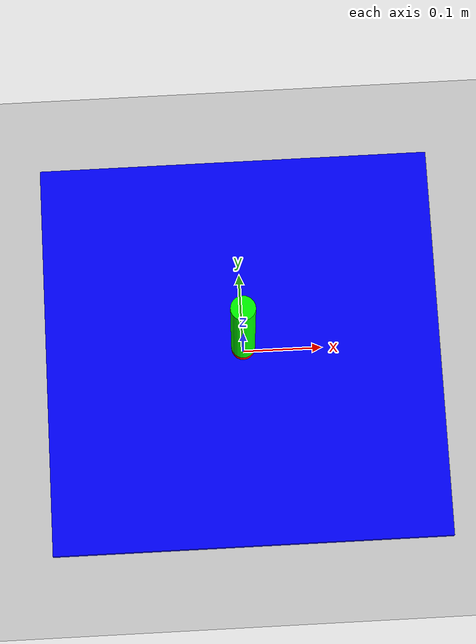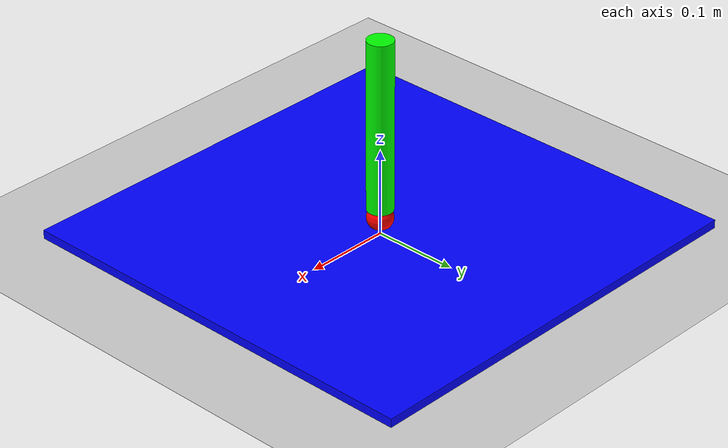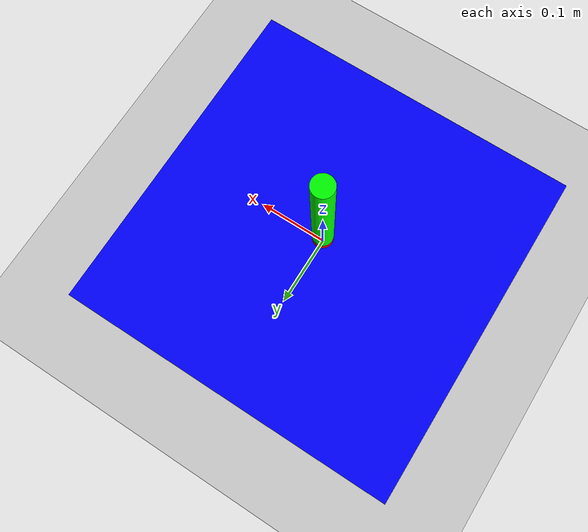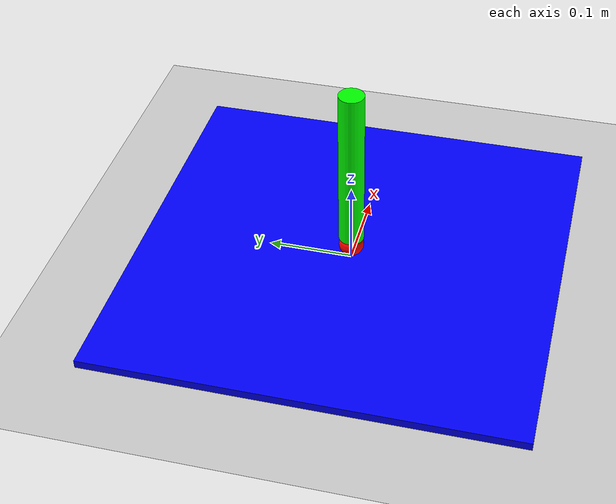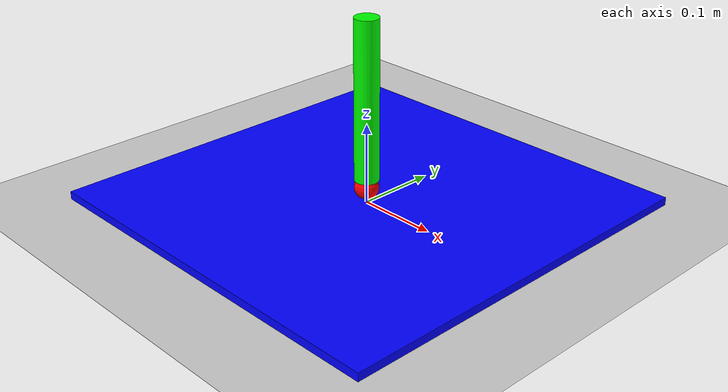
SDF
<sdf version="1.7">
 <world name="default">
  <light name="sun" type="directional">
   <pose>0 0 10 0 -0 0</pose>
   <diffuse>0.8 0.8 0.8 1</diffuse>
   <specular>0.2 0.2 0.2 1</specular>
   <attenuation>
    <range>1000</range>
    <constant>0.9</constant>
    <linear>0.01</linear>
    <quadratic>0.001</quadratic>
   </attenuation>
   <direction>-0.5 0.1 -0.9</direction>
   <spot><inner_angle>0</inner_angle><outer_angle>0</outer_angle><falloff>0</falloff></spot>
  </light>
  <model name="ground_plane">
   <static>1</static>
   <link name="link">
    <collision name="collision">
     <geometry><plane><normal>0 0 1</normal><size>100 100</size></plane></geometry>
     <surface><friction><ode><mu>100</mu><mu2>50</mu2></ode></friction></surface>
    </collision>
    <visual name="visual">
     <cast_shadows>0</cast_shadows>
     <geometry><plane><normal>0 0 1</normal><size>100 100</size></plane></geometry>
     <material>
      <script><uri>file://media/materials/scripts/gazebo.material</uri><name>Gazebo/Grey</name></script>
     </material>
    </visual>
   </link>
  </model>
  <gravity>0 0 -9.8</gravity>
  <magnetic_field>6e-06 2.3e-05 -4.2e-05</magnetic_field>
  <atmosphere type="adiabatic"/>
  <physics type="ode">
   <max_step_size>0.001</max_step_size>
   <real_time_factor>1</real_time_factor>
   <real_time_update_rate>1000</real_time_update_rate>
  </physics>
  <scene><ambient>0.4 0.4 0.4 1</ambient><background>0.7 0.7 0.7 1</background><shadows>1</shadows></scene>
  <spherical_coordinates>
   <surface_model>EARTH_WGS84</surface_model>
   <latitude_deg>0</latitude_deg>
   <longitude_deg>0</longitude_deg>
   <elevation>0</elevation>
   <heading_deg>0</heading_deg>
  </spherical_coordinates>
  <model name="braco_na_mesa">
   <link name="link_0">
    <inertial>
     <mass>1</mass>
     <inertia><ixx>0.1</ixx><ixy>0</ixy><ixz>0</ixz><iyy>0.1</iyy><iyz>0</iyz><izz>0.1</izz></inertia>
    </inertial>
    <pose>0 0 0.06 0 -0 0</pose>
    <visual name="visual">
     <geometry><sphere><radius>0.015</radius></sphere></geometry>
     <material>
      <lighting>1</lighting>
      <script><uri>file://media/materials/scripts/gazebo.material</uri><name>Gazebo/Grey</name></script>
      <shader type="pixel"><normal_map>__default__</normal_map></shader>
      <ambient>1.0 0.0 0.0 1</ambient>
      <diffuse>0.7 0.7 0.7 1</diffuse>
      <specular>0.01 0.01 0.01 1</specular>
      <emissive>0 0 0 1</emissive>
     </material>
    </visual>
    <collision name="collision">
     <geometry><sphere><radius>0.015</radius></sphere></geometry>
     <surface>
      <friction>
       <ode><mu>1</mu><mu2>1</mu2><fdir1>0 0 0</fdir1><slip1>0</slip1><slip2>0</slip2></ode>
       <torsional>
        <coefficient>1</coefficient>
        <patch_radius>0</patch_radius>
        <surface_radius>0</surface_radius>
        <use_patch_radius>1</use_patch_radius>
        <ode><slip>0</slip></ode>
       </torsional>
      </friction>
      <bounce><restitution_coefficient>0</restitution_coefficient><threshold>1e+06</threshold></bounce>
      <contact>
       <collide_without_contact>0</collide_without_contact>
       <collide_without_contact_bitmask>1</collide_without_contact_bitmask>
       <collide_bitmask>1</collide_bitmask>
       <ode>
        <soft_cfm>0</soft_cfm>
        <soft_erp>0.2</soft_erp>
        <kp>1e+13</kp>
        <kd>1</kd>
        <max_vel>0.01</max_vel>
        <min_depth>0</min_depth>
       </ode>
       <bullet>
        <split_impulse>1</split_impulse>
        <split_impulse_penetration_threshold>-0.01</split_impulse_penetration_threshold>
        <soft_cfm>0</soft_cfm>
        <soft_erp>0.2</soft_erp>
        <kp>1e+13</kp>
        <kd>1</kd>
       </bullet>
      </contact>
     </surface>
    </collision>
   </link>
   <link name="link_1">
    <inertial>
     <mass>1</mass>
     <inertia><ixx>0.145833</ixx><ixy>0</ixy><ixz>0</ixz><iyy>0.145833</iyy><iyz>0</iyz><izz>0.125</izz></inertia>
    </inertial>
    <pose>0 0 0.17 0 -0 0</pose>
    <visual name="visual">
     <geometry><cylinder><radius>0.015</radius><length>0.2</length></cylinder></geometry>
     <material>
      <lighting>1</lighting>
      <script><uri>file://media/materials/scripts/gazebo.material</uri><name>Gazebo/Grey</name></script>
      <shader type="pixel"><normal_map>__default__</normal_map></shader>
      <ambient>0.0 1.0 0.0 1</ambient>
      <diffuse>0.7 0.7 0.7 1</diffuse>
      <specular>0.01 0.01 0.01 1</specular>
      <emissive>0 0 0 1</emissive>
     </material>
    </visual>
    <collision name="collision">
     <geometry><cylinder><radius>0.015</radius><length>0.2</length></cylinder></geometry>
     <surface>
      <friction>
       <ode><mu>1</mu><mu2>1</mu2><fdir1>0 0 0</fdir1><slip1>0</slip1><slip2>0</slip2></ode>
       <torsional>
        <coefficient>1</coefficient>
        <patch_radius>0</patch_radius>
        <surface_radius>0</surface_radius>
        <use_patch_radius>1</use_patch_radius>
        <ode><slip>0</slip></ode>
       </torsional>
      </friction>
      <bounce><restitution_coefficient>0</restitution_coefficient><threshold>1e+06</threshold></bounce>
      <contact>
       <collide_without_contact>0</collide_without_contact>
       <collide_without_contact_bitmask>1</collide_without_contact_bitmask>
       <collide_bitmask>1</collide_bitmask>
       <ode>
        <soft_cfm>0</soft_cfm>
        <soft_erp>0.2</soft_erp>
        <kp>1e+13</kp>
        <kd>1</kd>
        <max_vel>0.01</max_vel>
        <min_depth>0</min_depth>
       </ode>
       <bullet>
        <split_impulse>1</split_impulse>
        <split_impulse_penetration_threshold>-0.01</split_impulse_penetration_threshold>
        <soft_cfm>0</soft_cfm>
        <soft_erp>0.2</soft_erp>
        <kp>1e+13</kp>
        <kd>1</kd>
       </bullet>
      </contact>
     </surface>
    </collision>
   </link>
   <link name="link_2">
    <static>0</static>
    <inertial>
     <mass>1</mass>
     <inertia>
      <ixx>0.166667</ixx>
      <ixy>0</ixy>
      <ixz>0</ixz>
      <iyy>0.166667</iyy>
      <iyz>0</iyz>
      <izz>0.166667</izz>
     </inertia>
    </inertial>
    <pose>0 0 0.045 0 -0 0</pose>
    <visual name="visual">
     <geometry><box><size>0.5 0.5 0.01</size></box></geometry>
     <material>
      <lighting>1</lighting>
      <script><uri>file://media/materials/scripts/gazebo.material</uri><name>Gazebo/Grey</name></script>
      <shader type="pixel"><normal_map>__default__</normal_map></shader>
      <ambient>0.0 0.0 1.0 1</ambient>
      <diffuse>0.7 0.7 0.7 1</diffuse>
      <specular>0.01 0.01 0.01 1</specular>
      <emissive>0 0 0 1</emissive>
     </material>
    </visual>
    <collision name="collision">
     <geometry><box><size>0.5 0.5 0.01</size></box></geometry>
     <surface>
      <friction>
       <ode><mu>1</mu><mu2>1</mu2><fdir1>0 0 0</fdir1><slip1>0</slip1><slip2>0</slip2></ode>
       <torsional>
        <coefficient>1</coefficient>
        <patch_radius>0</patch_radius>
        <surface_radius>0</surface_radius>
        <use_patch_radius>1</use_patch_radius>
        <ode><slip>0</slip></ode>
       </torsional>
      </friction>
      <bounce><restitution_coefficient>0</restitution_coefficient><threshold>1e+06</threshold></bounce>
      <contact>
       <collide_without_contact>0</collide_without_contact>
       <collide_without_contact_bitmask>1</collide_without_contact_bitmask>
       <collide_bitmask>1</collide_bitmask>
       <ode>
        <soft_cfm>0</soft_cfm>
        <soft_erp>0.2</soft_erp>
        <kp>1e+13</kp>
        <kd>1</kd>
        <max_vel>0.01</max_vel>
        <min_depth>0</min_depth>
       </ode>
       <bullet>
        <split_impulse>1</split_impulse>
        <split_impulse_penetration_threshold>-0.01</split_impulse_penetration_threshold>
        <soft_cfm>0</soft_cfm>
        <soft_erp>0.2</soft_erp>
        <kp>1e+13</kp>
        <kd>1</kd>
       </bullet>
      </contact>
     </surface>
    </collision>
   </link>
   <joint name="link_0_JOINT_0" type="fixed">
    <parent>link_0</parent>
    <child>link_1</child>
    <physics>
     <ode><limit><cfm>0</cfm><erp>0.2</erp></limit><suspension><cfm>0</cfm><erp>0.2</erp></suspension></ode>
    </physics>
   </joint>
   <joint name="link_2_JOINT_2" type="revolute">
    <parent>link_2</parent>
    <child>link_0</child>
    <axis>
     <xyz>0 1 0</xyz>
     <limit>
      <lower>-1.79769e+308</lower>
      <upper>1.79769e+308</upper>
      <effort>-1</effort>
      <velocity>-1</velocity>
     </limit>
     <dynamics>
      <spring_reference>0</spring_reference>
      <spring_stiffness>0</spring_stiffness>
      <damping>0</damping>
      <friction>0</friction>
     </dynamics>
    </axis>
    <physics>
     <ode><limit><cfm>0</cfm><erp>0.2</erp></limit><suspension><cfm>0</cfm><erp>0.2</erp></suspension></ode>
    </physics>
   </joint>
   <static>0</static>
   <pose>0 0 -0.04 0 -0 0</pose>
   <plugin name="joint_controll" filename="libarm_controll.so">
    <update_rate>1000</update_rate>
    <joint_name>link_2_JOINT_2</joint_name>
   </plugin>
  </model>
 </world>
</sdf>
